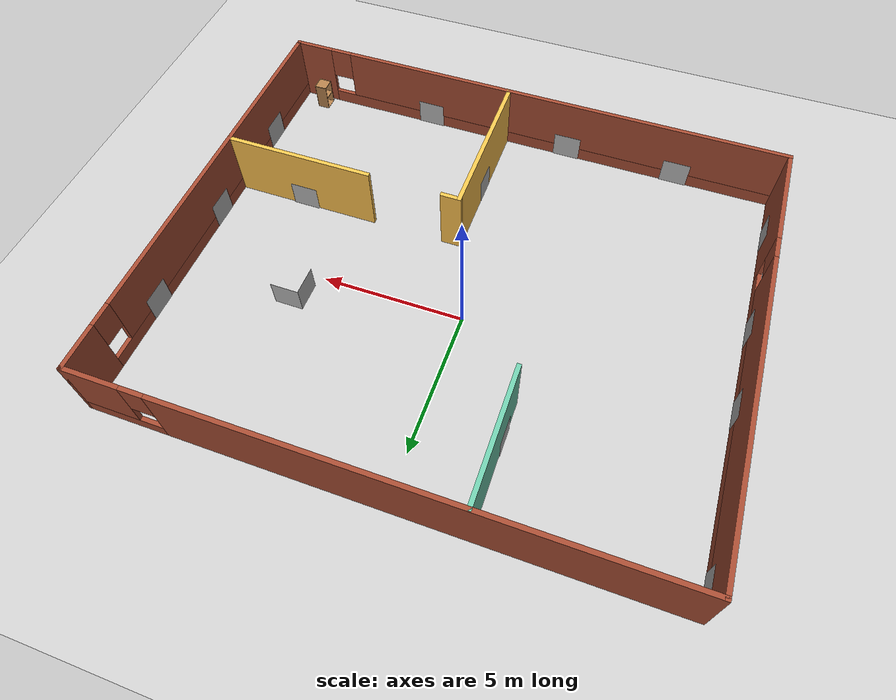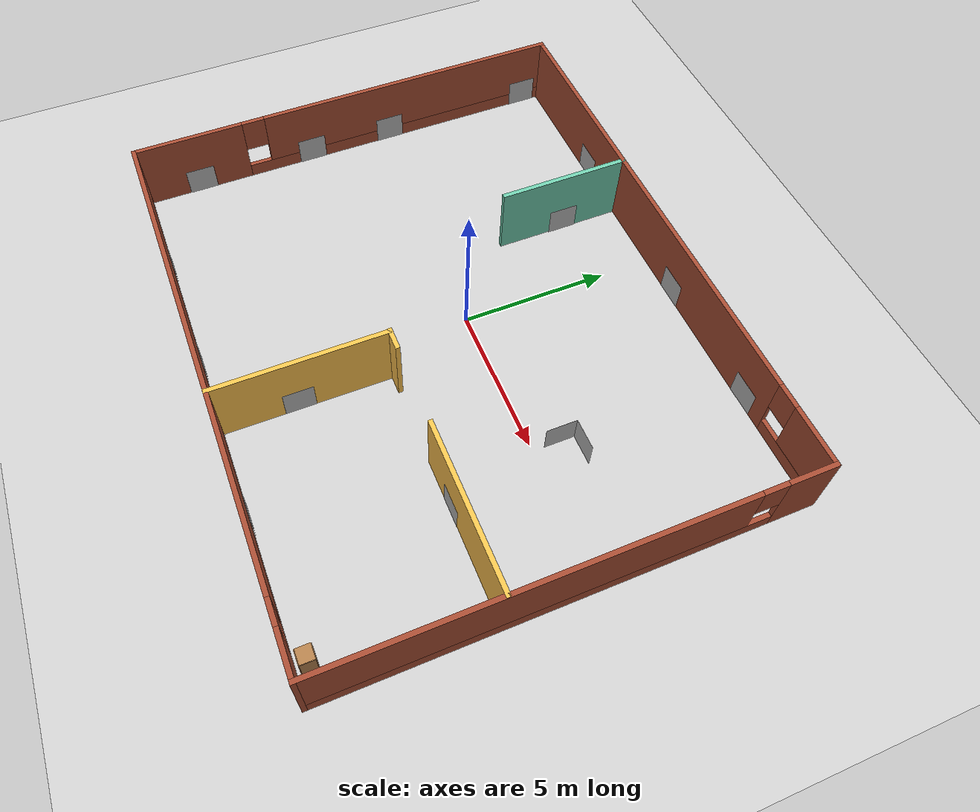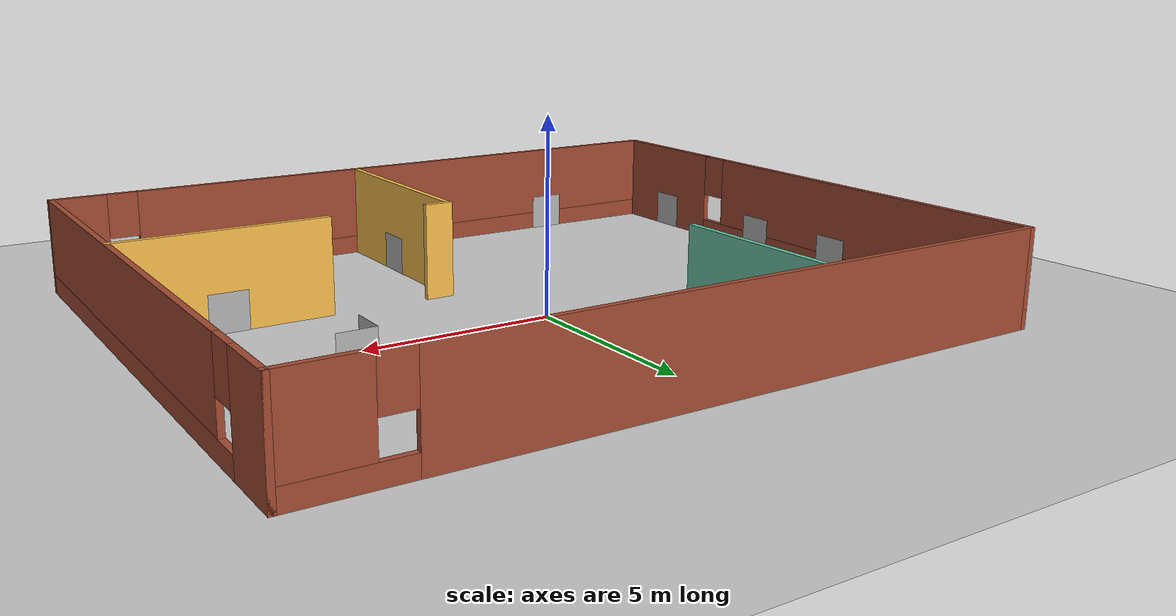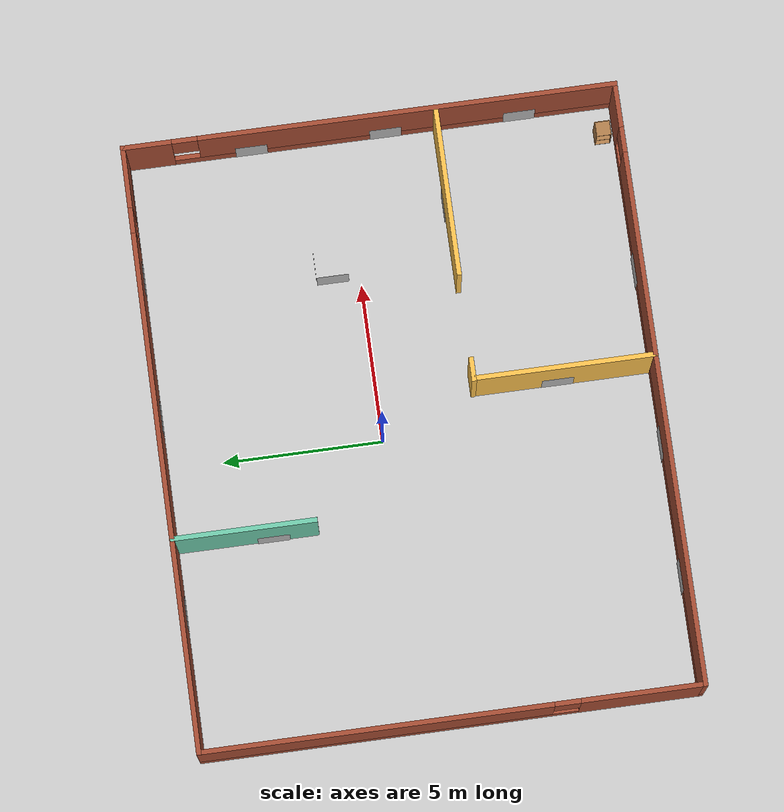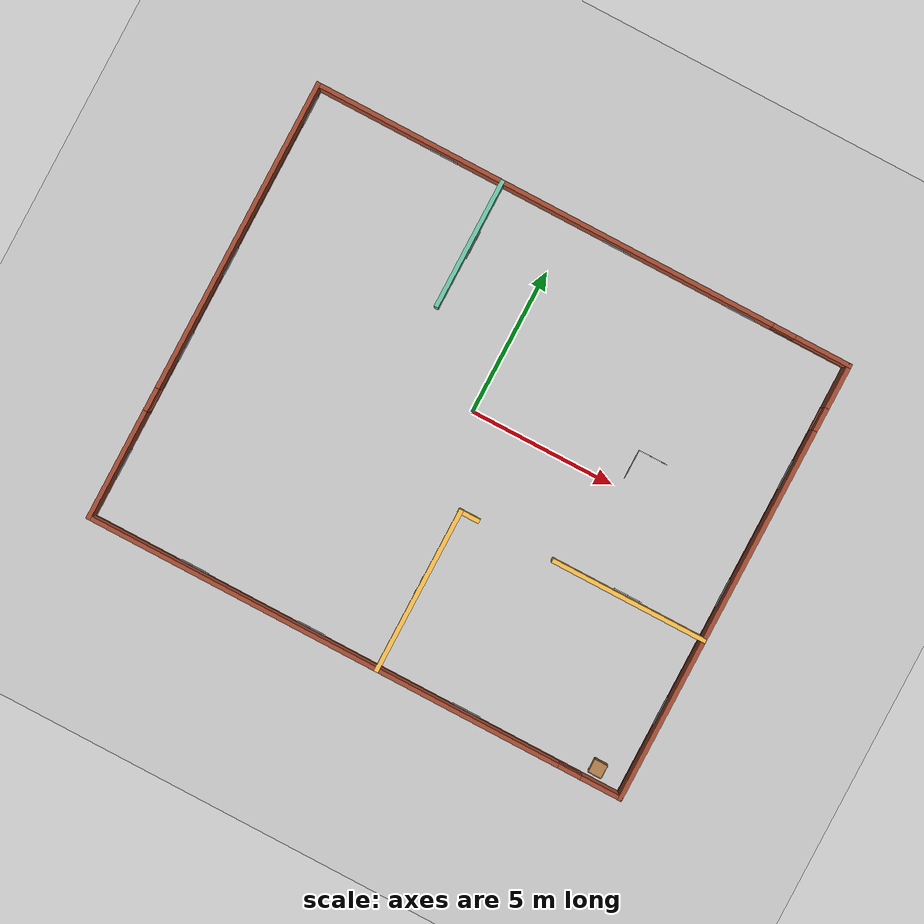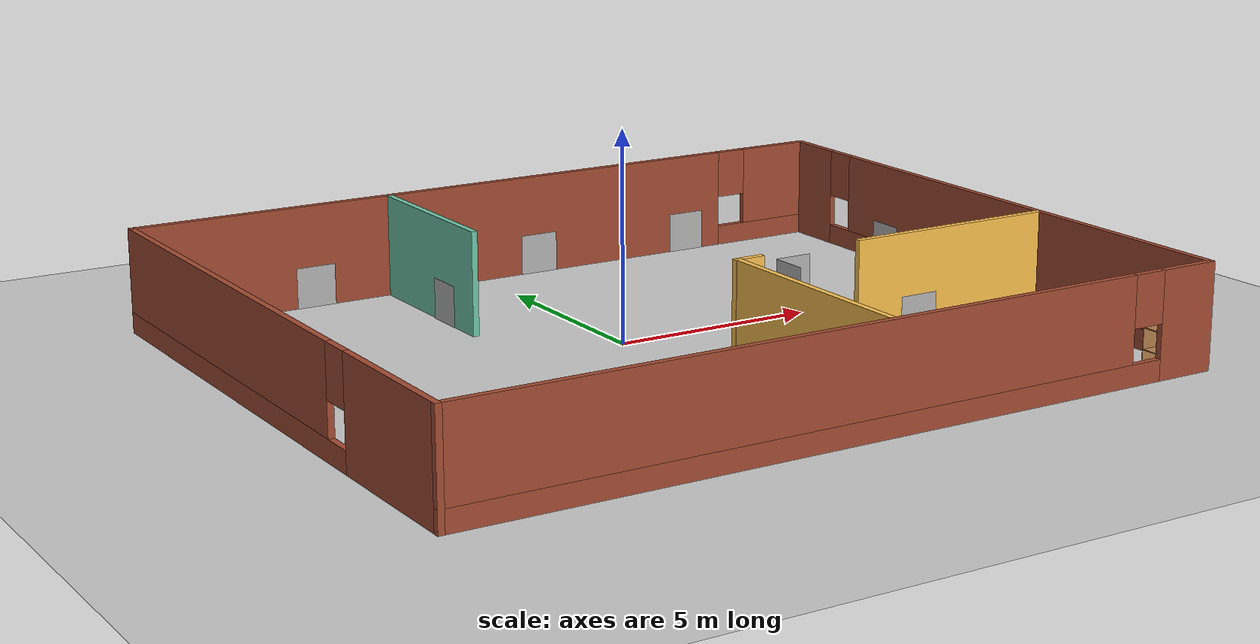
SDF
<sdf version="1.7">
 <world name="default">
  <light name="sun" type="directional">
   <pose>0 0 10 0 -0 0</pose>
   <diffuse>0.8 0.8 0.8 1</diffuse>
   <specular>0.2 0.2 0.2 1</specular>
   <attenuation>
    <range>1000</range>
    <constant>0.9</constant>
    <linear>0.01</linear>
    <quadratic>0.001</quadratic>
   </attenuation>
   <direction>-0.5 0.1 -0.9</direction>
   <spot><inner_angle>0</inner_angle><outer_angle>0</outer_angle><falloff>0</falloff></spot>
  </light>
  <model name="ground_plane">
   <static>1</static>
   <link name="link">
    <collision name="collision">
     <geometry><plane><normal>0 0 1</normal><size>100 100</size></plane></geometry>
     <surface><friction><ode><mu>100</mu><mu2>50</mu2></ode></friction></surface>
    </collision>
    <visual name="visual">
     <cast_shadows>0</cast_shadows>
     <geometry><plane><normal>0 0 1</normal><size>100 100</size></plane></geometry>
     <material>
      <script><uri>file://media/materials/scripts/gazebo.material</uri><name>Gazebo/Grey</name></script>
     </material>
    </visual>
   </link>
  </model>
  <gravity>0 0 -9.8</gravity>
  <magnetic_field>6e-06 2.3e-05 -4.2e-05</magnetic_field>
  <atmosphere type="adiabatic"/>
  <physics type="ode">
   <max_step_size>0.001</max_step_size>
   <real_time_factor>1</real_time_factor>
   <real_time_update_rate>1000</real_time_update_rate>
  </physics>
  <scene><ambient>0.4 0.4 0.4 1</ambient><background>0.7 0.7 0.7 1</background><shadows>1</shadows></scene>
  <spherical_coordinates>
   <surface_model>EARTH_WGS84</surface_model>
   <latitude_deg>0</latitude_deg>
   <longitude_deg>0</longitude_deg>
   <elevation>0</elevation>
   <heading_deg>0</heading_deg>
  </spherical_coordinates>
  <model name="Building">
   <pose>0.34004 -0.894772 0 0 -0 0</pose>
   <link name="Wall_10">
    <pose>-9.425 0 0 0 -0 1.5708</pose>
    <visual name="Wall_10_Visual_0">
     <pose>-5.8232 0 1.25 0 -0 0</pose>
     <geometry><box><size>3.85359 0.15 2.5</size></box></geometry>
     <material>
      <script><uri>file://media/materials/scripts/gazebo.material</uri><name>Gazebo/Bricks</name></script>
      <ambient>1 1 1 1</ambient>
     </material>
     <meta><layer>0</layer></meta>
    </visual>
    <collision name="Wall_10_Collision_0">
     <geometry><box><size>3.85359 0.15 2.5</size></box></geometry>
     <pose>-5.8232 0 1.25 0 -0 0</pose>
    </collision>
    <visual name="Wall_10_Visual_1">
     <pose>1.9268 0 0.25 0 -0 0</pose>
     <geometry><box><size>11.6464 0.15 0.5</size></box></geometry>
     <material>
      <script><uri>file://media/materials/scripts/gazebo.material</uri><name>Gazebo/Bricks</name></script>
      <ambient>1 1 1 1</ambient>
     </material>
     <meta><layer>0</layer></meta>
    </visual>
    <collision name="Wall_10_Collision_1">
     <geometry><box><size>11.6464 0.15 0.5</size></box></geometry>
     <pose>1.9268 0 0.25 0 -0 0</pose>
    </collision>
    <visual name="Wall_10_Visual_2">
     <pose>2.3268 0 1.5 0 -0 0</pose>
     <geometry><box><size>10.8464 0.15 2</size></box></geometry>
     <material>
      <script><uri>file://media/materials/scripts/gazebo.material</uri><name>Gazebo/Bricks</name></script>
      <ambient>1 1 1 1</ambient>
     </material>
     <meta><layer>0</layer></meta>
    </visual>
    <collision name="Wall_10_Collision_2">
     <geometry><box><size>10.8464 0.15 2</size></box></geometry>
     <pose>2.3268 0 1.5 0 -0 0</pose>
    </collision>
    <visual name="Wall_10_Visual_3">
     <pose>-3.49641 0 1.9 0 -0 0</pose>
     <geometry><box><size>0.8 0.15 1.2</size></box></geometry>
     <material>
      <script><uri>file://media/materials/scripts/gazebo.material</uri><name>Gazebo/Bricks</name></script>
      <ambient>1 1 1 1</ambient>
     </material>
     <meta><layer>0</layer></meta>
    </visual>
    <collision name="Wall_10_Collision_3">
     <geometry><box><size>0.8 0.15 1.2</size></box></geometry>
     <pose>-3.49641 0 1.9 0 -0 0</pose>
    </collision>
   </link>
   <link name="Wall_12">
    <collision name="Wall_12_Collision">
     <geometry><box><size>4.5 0.15 2.5</size></box></geometry>
     <pose>0 0 1.25 0 -0 0</pose>
    </collision>
    <visual name="Wall_12_Visual">
     <pose>0 0 1.25 0 -0 0</pose>
     <geometry><box><size>4.5 0.15 2.5</size></box></geometry>
     <material>
      <script><uri>file://media/materials/scripts/gazebo.material</uri><name>Gazebo/Grey</name></script>
      <ambient>0.435294 0.796078 0.67451 1</ambient>
     </material>
     <meta><layer>0</layer></meta>
    </visual>
    <pose>-2.89284 5.48192 0 0 -0 -1.5708</pose>
   </link>
   <link name="Wall_17">
    <pose>5.09313 -2.07245 0 0 -0 3.14159</pose>
    <visual name="Wall_17_Visual_0">
     <pose>-1.67496 0 1.25 0 -0 0</pose>
     <geometry><box><size>5.43506 0.15 2.5</size></box></geometry>
     <material>
      <script><uri>file://media/materials/scripts/gazebo.material</uri><name>Gazebo/Grey</name></script>
      <ambient>1 0.764706 0.305882 1</ambient>
     </material>
     <meta><layer>0</layer></meta>
    </visual>
    <collision name="Wall_17_Collision_0">
     <geometry><box><size>5.43506 0.15 2.5</size></box></geometry>
     <pose>-1.67496 0 1.25 0 -0 0</pose>
    </collision>
    <visual name="Wall_17_Visual_1">
     <pose>4.01253 0 1.25 0 -0 0</pose>
     <geometry><box><size>0.759923 0.15 2.5</size></box></geometry>
     <material>
      <script><uri>file://media/materials/scripts/gazebo.material</uri><name>Gazebo/Grey</name></script>
      <ambient>1 0.764706 0.305882 1</ambient>
     </material>
     <meta><layer>0</layer></meta>
    </visual>
    <collision name="Wall_17_Collision_1">
     <geometry><box><size>0.759923 0.15 2.5</size></box></geometry>
     <pose>4.01253 0 1.25 0 -0 0</pose>
    </collision>
   </link>
   <link name="Wall_18">
    <collision name="Wall_18_Collision">
     <geometry><box><size>5.75 0.15 2.5</size></box></geometry>
     <pose>0 0 1.25 0 -0 0</pose>
    </collision>
    <visual name="Wall_18_Visual">
     <pose>0 0 1.25 0 -0 0</pose>
     <geometry><box><size>5.75 0.15 2.5</size></box></geometry>
     <material>
      <script><uri>file://media/materials/scripts/gazebo.material</uri><name>Gazebo/Grey</name></script>
      <ambient>1 0.764706 0.305882 1</ambient>
     </material>
     <meta><layer>0</layer></meta>
    </visual>
    <pose>0.793131 -4.87245 0 0 -0 -1.5708</pose>
   </link>
   <link name="Wall_7">
    <pose>-0 7.675 0 0 -0 0</pose>
    <visual name="Wall_7_Visual_0">
     <pose>-1.39268 0 1.25 0 -0 0</pose>
     <geometry><box><size>16.2146 0.15 2.5</size></box></geometry>
     <material>
      <script><uri>file://media/materials/scripts/gazebo.material</uri><name>Gazebo/Bricks</name></script>
      <ambient>1 1 1 1</ambient>
     </material>
     <meta><layer>0</layer></meta>
    </visual>
    <collision name="Wall_7_Collision_0">
     <geometry><box><size>16.2146 0.15 2.5</size></box></geometry>
     <pose>-1.39268 0 1.25 0 -0 0</pose>
    </collision>
    <visual name="Wall_7_Visual_1">
     <pose>8.10732 0 0.25 0 -0 0</pose>
     <geometry><box><size>2.78535 0.15 0.5</size></box></geometry>
     <material>
      <script><uri>file://media/materials/scripts/gazebo.material</uri><name>Gazebo/Bricks</name></script>
      <ambient>1 1 1 1</ambient>
     </material>
     <meta><layer>0</layer></meta>
    </visual>
    <collision name="Wall_7_Collision_1">
     <geometry><box><size>2.78535 0.15 0.5</size></box></geometry>
     <pose>8.10732 0 0.25 0 -0 0</pose>
    </collision>
    <visual name="Wall_7_Visual_2">
     <pose>8.50732 0 1.5 0 -0 0</pose>
     <geometry><box><size>1.98535 0.15 2</size></box></geometry>
     <material>
      <script><uri>file://media/materials/scripts/gazebo.material</uri><name>Gazebo/Bricks</name></script>
      <ambient>1 1 1 1</ambient>
     </material>
     <meta><layer>0</layer></meta>
    </visual>
    <collision name="Wall_7_Collision_2">
     <geometry><box><size>1.98535 0.15 2</size></box></geometry>
     <pose>8.50732 0 1.5 0 -0 0</pose>
    </collision>
    <visual name="Wall_7_Visual_3">
     <pose>7.11465 0 1.9 0 -0 0</pose>
     <geometry><box><size>0.8 0.15 1.2</size></box></geometry>
     <material>
      <script><uri>file://media/materials/scripts/gazebo.material</uri><name>Gazebo/Bricks</name></script>
      <ambient>1 1 1 1</ambient>
     </material>
     <meta><layer>0</layer></meta>
    </visual>
    <collision name="Wall_7_Collision_3">
     <geometry><box><size>0.8 0.15 1.2</size></box></geometry>
     <pose>7.11465 0 1.9 0 -0 0</pose>
    </collision>
   </link>
   <link name="Wall_8">
    <pose>9.425 0 0 0 -0 -1.5708</pose>
    <visual name="Wall_8_Visual_0">
     <pose>-6.95523 0 1.25 0 -0 0</pose>
     <geometry><box><size>1.58954 0.15 2.5</size></box></geometry>
     <material>
      <script><uri>file://media/materials/scripts/gazebo.material</uri><name>Gazebo/Bricks</name></script>
      <ambient>1 1 1 1</ambient>
     </material>
     <meta><layer>0</layer></meta>
    </visual>
    <collision name="Wall_8_Collision_0">
     <geometry><box><size>1.58954 0.15 2.5</size></box></geometry>
     <pose>-6.95523 0 1.25 0 -0 0</pose>
    </collision>
    <visual name="Wall_8_Visual_1">
     <pose>0.79477 0 0.25 0 -0 0</pose>
     <geometry><box><size>13.9105 0.15 0.5</size></box></geometry>
     <material>
      <script><uri>file://media/materials/scripts/gazebo.material</uri><name>Gazebo/Bricks</name></script>
      <ambient>1 1 1 1</ambient>
     </material>
     <meta><layer>0</layer></meta>
    </visual>
    <collision name="Wall_8_Collision_1">
     <geometry><box><size>13.9105 0.15 0.5</size></box></geometry>
     <pose>0.79477 0 0.25 0 -0 0</pose>
    </collision>
    <visual name="Wall_8_Visual_2">
     <pose>1.19477 0 1.5 0 -0 0</pose>
     <geometry><box><size>13.1105 0.15 2</size></box></geometry>
     <material>
      <script><uri>file://media/materials/scripts/gazebo.material</uri><name>Gazebo/Bricks</name></script>
      <ambient>1 1 1 1</ambient>
     </material>
     <meta><layer>0</layer></meta>
    </visual>
    <collision name="Wall_8_Collision_2">
     <geometry><box><size>13.1105 0.15 2</size></box></geometry>
     <pose>1.19477 0 1.5 0 -0 0</pose>
    </collision>
    <visual name="Wall_8_Visual_3">
     <pose>-5.76046 0 1.9 0 -0 0</pose>
     <geometry><box><size>0.8 0.15 1.2</size></box></geometry>
     <material>
      <script><uri>file://media/materials/scripts/gazebo.material</uri><name>Gazebo/Bricks</name></script>
      <ambient>1 1 1 1</ambient>
     </material>
     <meta><layer>0</layer></meta>
    </visual>
    <collision name="Wall_8_Collision_3">
     <geometry><box><size>0.8 0.15 1.2</size></box></geometry>
     <pose>-5.76046 0 1.9 0 -0 0</pose>
    </collision>
   </link>
   <link name="Wall_9">
    <pose>-0 -7.675 0 0 -0 3.14159</pose>
    <visual name="Wall_9_Visual_0">
     <pose>-8.76003 0 1.25 0 -0 0</pose>
     <geometry><box><size>1.47995 0.15 2.5</size></box></geometry>
     <material>
      <script><uri>file://media/materials/scripts/gazebo.material</uri><name>Gazebo/Bricks</name></script>
      <ambient>1 1 1 1</ambient>
     </material>
     <meta><layer>0</layer></meta>
    </visual>
    <collision name="Wall_9_Collision_0">
     <geometry><box><size>1.47995 0.15 2.5</size></box></geometry>
     <pose>-8.76003 0 1.25 0 -0 0</pose>
    </collision>
    <visual name="Wall_9_Visual_1">
     <pose>0.739975 0 0.25 0 -0 0</pose>
     <geometry><box><size>17.5201 0.15 0.5</size></box></geometry>
     <material>
      <script><uri>file://media/materials/scripts/gazebo.material</uri><name>Gazebo/Bricks</name></script>
      <ambient>1 1 1 1</ambient>
     </material>
     <meta><layer>0</layer></meta>
    </visual>
    <collision name="Wall_9_Collision_1">
     <geometry><box><size>17.5201 0.15 0.5</size></box></geometry>
     <pose>0.739975 0 0.25 0 -0 0</pose>
    </collision>
    <visual name="Wall_9_Visual_2">
     <pose>1.13997 0 1.5 0 -0 0</pose>
     <geometry><box><size>16.7201 0.15 2</size></box></geometry>
     <material>
      <script><uri>file://media/materials/scripts/gazebo.material</uri><name>Gazebo/Bricks</name></script>
      <ambient>1 1 1 1</ambient>
     </material>
     <meta><layer>0</layer></meta>
    </visual>
    <collision name="Wall_9_Collision_2">
     <geometry><box><size>16.7201 0.15 2</size></box></geometry>
     <pose>1.13997 0 1.5 0 -0 0</pose>
    </collision>
    <visual name="Wall_9_Visual_3">
     <pose>-7.62005 0 1.9 0 -0 0</pose>
     <geometry><box><size>0.8 0.15 1.2</size></box></geometry>
     <material>
      <script><uri>file://media/materials/scripts/gazebo.material</uri><name>Gazebo/Bricks</name></script>
      <ambient>1 1 1 1</ambient>
     </material>
     <meta><layer>0</layer></meta>
    </visual>
    <collision name="Wall_9_Collision_3">
     <geometry><box><size>0.8 0.15 1.2</size></box></geometry>
     <pose>-7.62005 0 1.9 0 -0 0</pose>
    </collision>
   </link>
   <static>1</static>
  </model>
  <model name="cabinet">
   <static>1</static>
   <link name="cabinet_bottom_plate">
    <inertial>
     <pose>0 0 -1 0 -0 0</pose>
     <inertia><ixx>2.05</ixx><ixy>0</ixy><ixz>0</ixz><iyy>2.05</iyy><iyz>0</iyz><izz>2.05</izz></inertia>
     <mass>25</mass>
    </inertial>
    <collision name="cabinet_bottom_plate_geom">
     <pose>0 0 0.01 0 -0 0</pose>
     <geometry><box><size>0.45 0.45 0.02</size></box></geometry>
    </collision>
    <visual name="cabinet_bottom_plate_geom_visual">
     <pose>0 0 0.01 0 -0 0</pose>
     <geometry><box><size>0.45 0.45 0.02</size></box></geometry>
     <material>
      <script><uri>file://media/materials/scripts/gazebo.material</uri><name>Gazebo/Wood</name></script>
     </material>
    </visual>
    <collision name="cabinet_bottom_plate_geom_cabinet_back_plate">
     <pose>0.235 0 0.51 0 -0 0</pose>
     <geometry><box><size>0.02 0.45 1.02</size></box></geometry>
    </collision>
    <visual name="cabinet_bottom_plate_geom_cabinet_back_plate_visual">
     <pose>0.235 0 0.51 0 -0 0</pose>
     <geometry><box><size>0.02 0.45 1.02</size></box></geometry>
     <material>
      <script><uri>file://media/materials/scripts/gazebo.material</uri><name>Gazebo/Wood</name></script>
     </material>
    </visual>
    <collision name="cabinet_bottom_plate_geom_cabinet_left_plate">
     <pose>0 0.235 0.51 0 -0 0</pose>
     <geometry><box><size>0.45 0.02 1.02</size></box></geometry>
    </collision>
    <visual name="cabinet_bottom_plate_geom_cabinet_left_plate_visual">
     <pose>0 0.235 0.51 0 -0 0</pose>
     <geometry><box><size>0.45 0.02 1.02</size></box></geometry>
     <material>
      <script><uri>file://media/materials/scripts/gazebo.material</uri><name>Gazebo/Wood</name></script>
     </material>
    </visual>
    <collision name="cabinet_bottom_plate_geom_cabinet_middle_plate">
     <pose>0 0 0.51 0 -0 0</pose>
     <geometry><box><size>0.45 0.45 0.02</size></box></geometry>
    </collision>
    <visual name="cabinet_bottom_plate_geom_cabinet_middle_plate_visual">
     <pose>0 0 0.51 0 -0 0</pose>
     <geometry><box><size>0.45 0.45 0.02</size></box></geometry>
     <material>
      <script><uri>file://media/materials/scripts/gazebo.material</uri><name>Gazebo/Wood</name></script>
     </material>
    </visual>
    <collision name="cabinet_bottom_plate_geom_cabinet_right_plate">
     <pose>0 -0.235 0.51 0 -0 0</pose>
     <geometry><box><size>0.45 0.02 1.02</size></box></geometry>
    </collision>
    <visual name="cabinet_bottom_plate_geom_cabinet_right_plate_visual">
     <pose>0 -0.235 0.51 0 -0 0</pose>
     <geometry><box><size>0.45 0.02 1.02</size></box></geometry>
     <material>
      <script><uri>file://media/materials/scripts/gazebo.material</uri><name>Gazebo/Wood</name></script>
     </material>
    </visual>
    <collision name="cabinet_bottom_plate_geom_cabinet_top_plate">
     <pose>0 0 1.01 0 -0 0</pose>
     <geometry><box><size>0.45 0.45 0.02</size></box></geometry>
    </collision>
    <visual name="cabinet_bottom_plate_geom_cabinet_top_plate_visual">
     <pose>0 0 1.01 0 -0 0</pose>
     <geometry><box><size>0.45 0.45 0.02</size></box></geometry>
     <material>
      <script><uri>file://media/materials/scripts/gazebo.material</uri><name>Gazebo/Wood</name></script>
     </material>
    </visual>
   </link>
   <pose>8.77356 -8.13059 0 0 -0 0</pose>
  </model>
  <model name="ArUco Marker 0">
   <link name="link">
    <inertial>
     <mass>0.001</mass>
     <inertia>
      <ixx>3.75e-06</ixx>
      <ixy>0</ixy>
      <ixz>0</ixz>
      <iyy>1.875e-06</iyy>
      <iyz>0</iyz>
      <izz>1.875e-06</izz>
     </inertia>
    </inertial>
    <visual name="front_visual">
     <pose>5e-05 0 0 0 -0 0</pose>
     <geometry><box><size>0.0001 1 1</size></box></geometry>
     <material>
      <script>
       <uri>model://AR00/materials/scripts</uri>
       <uri>model://AR00/materials/textures</uri>
       <name>Marker0</name>
      </script>
     </material>
    </visual>
    <visual name="rear_visual">
     <pose>-5e-05 0 0 0 -0 0</pose>
     <geometry><box><size>0.0001 1 1</size></box></geometry>
    </visual>
    <collision name="collision"><geometry><box><size>0.0001 1 1</size></box></geometry></collision>
   </link>
   <pose>-9 -6.6027 0.5 3e-06 -0 0</pose>
  </model>
  <model name="ArUco Marker 1">
   <link name="link">
    <inertial>
     <mass>0.001</mass>
     <inertia>
      <ixx>3.75e-06</ixx>
      <ixy>0</ixy>
      <ixz>0</ixz>
      <iyy>1.875e-06</iyy>
      <iyz>0</iyz>
      <izz>1.875e-06</izz>
     </inertia>
    </inertial>
    <visual name="front_visual">
     <pose>5e-05 0 0 0 -0 0</pose>
     <geometry><box><size>0.0001 1 1</size></box></geometry>
     <material>
      <script>
       <uri>model://AR01/materials/scripts</uri>
       <uri>model://AR01/materials/textures</uri>
       <name>Marker1</name>
      </script>
     </material>
    </visual>
    <visual name="rear_visual">
     <pose>-5e-05 0 0 0 -0 0</pose>
     <geometry><box><size>0.0001 1 1</size></box></geometry>
    </visual>
    <collision name="collision"><geometry><box><size>0.0001 1 1</size></box></geometry></collision>
   </link>
   <pose>-9 -2.43358 0.5 3e-06 0 4e-06</pose>
  </model>
  <model name="ArUco Marker 2">
   <link name="link">
    <inertial>
     <mass>0.001</mass>
     <inertia>
      <ixx>3.75e-06</ixx>
      <ixy>0</ixy>
      <ixz>0</ixz>
      <iyy>1.875e-06</iyy>
      <iyz>0</iyz>
      <izz>1.875e-06</izz>
     </inertia>
    </inertial>
    <visual name="front_visual">
     <pose>5e-05 0 0 0 -0 0</pose>
     <geometry><box><size>0.0001 1 1</size></box></geometry>
     <material>
      <script>
       <uri>model://AR02/materials/scripts</uri>
       <uri>model://AR02/materials/textures</uri>
       <name>Marker2</name>
      </script>
     </material>
    </visual>
    <visual name="rear_visual">
     <pose>-5e-05 0 0 0 -0 0</pose>
     <geometry><box><size>0.0001 1 1</size></box></geometry>
    </visual>
    <collision name="collision"><geometry><box><size>0.0001 1 1</size></box></geometry></collision>
   </link>
   <pose>-9 0.600883 0.5 3e-06 0 4e-06</pose>
  </model>
  <model name="ArUco Marker 3">
   <link name="link">
    <inertial>
     <mass>0.001</mass>
     <inertia>
      <ixx>3.75e-06</ixx>
      <ixy>0</ixy>
      <ixz>0</ixz>
      <iyy>1.875e-06</iyy>
      <iyz>0</iyz>
      <izz>1.875e-06</izz>
     </inertia>
    </inertial>
    <visual name="front_visual">
     <pose>5e-05 0 0 0 -0 0</pose>
     <geometry><box><size>0.0001 1 1</size></box></geometry>
     <material>
      <script>
       <uri>model://AR03/materials/scripts</uri>
       <uri>model://AR03/materials/textures</uri>
       <name>Marker3</name>
      </script>
     </material>
    </visual>
    <visual name="rear_visual">
     <pose>-5e-05 0 0 0 -0 0</pose>
     <geometry><box><size>0.0001 1 1</size></box></geometry>
    </visual>
    <collision name="collision"><geometry><box><size>0.0001 1 1</size></box></geometry></collision>
   </link>
   <pose>-4.58408 6.7 0.5 3e-06 -0 -1.56993</pose>
  </model>
  <model name="ArUco Marker 4">
   <link name="link">
    <inertial>
     <mass>0.001</mass>
     <inertia>
      <ixx>3.75e-06</ixx>
      <ixy>0</ixy>
      <ixz>0</ixz>
      <iyy>1.875e-06</iyy>
      <iyz>0</iyz>
      <izz>1.875e-06</izz>
     </inertia>
    </inertial>
    <visual name="front_visual">
     <pose>5e-05 0 0 0 -0 0</pose>
     <geometry><box><size>0.0001 1 1</size></box></geometry>
     <material>
      <script>
       <uri>model://AR04/materials/scripts</uri>
       <uri>model://AR04/materials/textures</uri>
       <name>Marker4</name>
      </script>
     </material>
    </visual>
    <visual name="rear_visual">
     <pose>-5e-05 0 0 0 -0 0</pose>
     <geometry><box><size>0.0001 1 1</size></box></geometry>
    </visual>
    <collision name="collision"><geometry><box><size>0.0001 1 1</size></box></geometry></collision>
   </link>
   <pose>-1.31296 -8.47 0.5 3e-06 -0 1.56996</pose>
  </model>
  <model name="ArUco Marker 5">
   <link name="link">
    <inertial>
     <mass>0.001</mass>
     <inertia>
      <ixx>3.75e-06</ixx>
      <ixy>0</ixy>
      <ixz>0</ixz>
      <iyy>1.875e-06</iyy>
      <iyz>0</iyz>
      <izz>1.875e-06</izz>
     </inertia>
    </inertial>
    <visual name="front_visual">
     <pose>5e-05 0 0 0 -0 0</pose>
     <geometry><box><size>0.0001 1 1</size></box></geometry>
     <material>
      <script>
       <uri>model://AR05/materials/scripts</uri>
       <uri>model://AR05/materials/textures</uri>
       <name>Marker5</name>
      </script>
     </material>
    </visual>
    <visual name="rear_visual">
     <pose>-5e-05 0 0 0 -0 0</pose>
     <geometry><box><size>0.0001 1 1</size></box></geometry>
    </visual>
    <collision name="collision"><geometry><box><size>0.0001 1 1</size></box></geometry></collision>
   </link>
   <pose>-5.49648 -8.47 0.5 -3e-06 -0 1.56997</pose>
  </model>
  <model name="ArUco Marker 6">
   <link name="link">
    <inertial>
     <mass>0.001</mass>
     <inertia>
      <ixx>3.75e-06</ixx>
      <ixy>0</ixy>
      <ixz>0</ixz>
      <iyy>1.875e-06</iyy>
      <iyz>0</iyz>
      <izz>1.875e-06</izz>
     </inertia>
    </inertial>
    <visual name="front_visual">
     <pose>5e-05 0 0 0 -0 0</pose>
     <geometry><box><size>0.0001 1 1</size></box></geometry>
     <material>
      <script>
       <uri>model://AR06/materials/scripts</uri>
       <uri>model://AR06/materials/textures</uri>
       <name>Marker6</name>
      </script>
     </material>
    </visual>
    <visual name="rear_visual">
     <pose>-5e-05 0 0 0 -0 0</pose>
     <geometry><box><size>0.0001 1 1</size></box></geometry>
    </visual>
    <collision name="collision"><geometry><box><size>0.0001 1 1</size></box></geometry></collision>
   </link>
   <pose>1.0501 -5.60745 0.5 3e-06 -0 3.13998</pose>
  </model>
  <model name="ArUco Marker 8">
   <link name="link">
    <inertial>
     <mass>0.001</mass>
     <inertia>
      <ixx>3.75e-06</ixx>
      <ixy>0</ixy>
      <ixz>0</ixz>
      <iyy>1.875e-06</iyy>
      <iyz>0</iyz>
      <izz>1.875e-06</izz>
     </inertia>
    </inertial>
    <visual name="front_visual">
     <pose>5e-05 0 0 0 -0 0</pose>
     <geometry><box><size>0.0001 1 1</size></box></geometry>
     <material>
      <script>
       <uri>model://AR08/materials/scripts</uri>
       <uri>model://AR08/materials/textures</uri>
       <name>Marker8</name>
      </script>
     </material>
    </visual>
    <visual name="rear_visual">
     <pose>-5e-05 0 0 0 -0 0</pose>
     <geometry><box><size>0.0001 1 1</size></box></geometry>
    </visual>
    <collision name="collision"><geometry><box><size>0.0001 1 1</size></box></geometry></collision>
   </link>
   <pose>1.58425 6.7 0.5 3e-06 -0 -1.56994</pose>
  </model>
  <model name="ArUco Marker 9">
   <link name="link">
    <inertial>
     <mass>0.001</mass>
     <inertia>
      <ixx>3.75e-06</ixx>
      <ixy>0</ixy>
      <ixz>0</ixz>
      <iyy>1.875e-06</iyy>
      <iyz>0</iyz>
      <izz>1.875e-06</izz>
     </inertia>
    </inertial>
    <visual name="front_visual">
     <pose>5e-05 0 0 0 -0 0</pose>
     <geometry><box><size>0.0001 1 1</size></box></geometry>
     <material>
      <script>
       <uri>model://AR09/materials/scripts</uri>
       <uri>model://AR09/materials/textures</uri>
       <name>Marker9</name>
      </script>
     </material>
    </visual>
    <visual name="rear_visual">
     <pose>-5e-05 0 0 0 -0 0</pose>
     <geometry><box><size>0.0001 1 1</size></box></geometry>
    </visual>
    <collision name="collision"><geometry><box><size>0.0001 1 1</size></box></geometry></collision>
   </link>
   <pose>6.02877 6.7 0.5 3e-06 -0 -1.56994</pose>
  </model>
  <model name="ArUco Marker 10">
   <link name="link">
    <inertial>
     <mass>0.001</mass>
     <inertia>
      <ixx>3.75e-06</ixx>
      <ixy>0</ixy>
      <ixz>0</ixz>
      <iyy>1.875e-06</iyy>
      <iyz>0</iyz>
      <izz>1.875e-06</izz>
     </inertia>
    </inertial>
    <visual name="front_visual">
     <pose>5e-05 0 0 0 -0 0</pose>
     <geometry><box><size>0.0001 1 1</size></box></geometry>
     <material>
      <script>
       <uri>model://AR10/materials/scripts</uri>
       <uri>model://AR10/materials/textures</uri>
       <name>Marker10</name>
      </script>
     </material>
    </visual>
    <visual name="rear_visual">
     <pose>-5e-05 0 0 0 -0 0</pose>
     <geometry><box><size>0.0001 1 1</size></box></geometry>
    </visual>
    <collision name="collision"><geometry><box><size>0.0001 1 1</size></box></geometry></collision>
   </link>
   <pose>9.68324 2.85356 0.5 -3e-06 -0 3.13999</pose>
  </model>
  <model name="ArUco Marker 11">
   <link name="link">
    <inertial>
     <mass>0.001</mass>
     <inertia>
      <ixx>3.75e-06</ixx>
      <ixy>0</ixy>
      <ixz>0</ixz>
      <iyy>1.875e-06</iyy>
      <iyz>0</iyz>
      <izz>1.875e-06</izz>
     </inertia>
    </inertial>
    <visual name="front_visual">
     <pose>5e-05 0 0 0 -0 0</pose>
     <geometry><box><size>0.0001 1 1</size></box></geometry>
     <material>
      <script>
       <uri>model://AR11/materials/scripts</uri>
       <uri>model://AR11/materials/textures</uri>
       <name>Marker11</name>
      </script>
     </material>
    </visual>
    <visual name="rear_visual">
     <pose>-5e-05 0 0 0 -0 0</pose>
     <geometry><box><size>0.0001 1 1</size></box></geometry>
    </visual>
    <collision name="collision"><geometry><box><size>0.0001 1 1</size></box></geometry></collision>
   </link>
   <pose>9.68324 -1.38058 0.5 -3e-06 -0 3.13999</pose>
  </model>
  <model name="ArUco Marker 12">
   <link name="link">
    <inertial>
     <mass>0.001</mass>
     <inertia>
      <ixx>3.75e-06</ixx>
      <ixy>0</ixy>
      <ixz>0</ixz>
      <iyy>1.875e-06</iyy>
      <iyz>0</iyz>
      <izz>1.875e-06</izz>
     </inertia>
    </inertial>
    <visual name="front_visual">
     <pose>5e-05 0 0 0 -0 0</pose>
     <geometry><box><size>0.0001 1 1</size></box></geometry>
     <material>
      <script>
       <uri>model://AR12/materials/scripts</uri>
       <uri>model://AR12/materials/textures</uri>
       <name>Marker12</name>
      </script>
     </material>
    </visual>
    <visual name="rear_visual">
     <pose>-5e-05 0 0 0 -0 0</pose>
     <geometry><box><size>0.0001 1 1</size></box></geometry>
    </visual>
    <collision name="collision"><geometry><box><size>0.0001 1 1</size></box></geometry></collision>
   </link>
   <pose>7.08134 -2.855 0.5 3e-06 -0 1.56997</pose>
  </model>
  <model name="ArUco Marker 13">
   <link name="link">
    <inertial>
     <mass>0.001</mass>
     <inertia>
      <ixx>3.75e-06</ixx>
      <ixy>0</ixy>
      <ixz>0</ixz>
      <iyy>1.875e-06</iyy>
      <iyz>0</iyz>
      <izz>1.875e-06</izz>
     </inertia>
    </inertial>
    <visual name="front_visual">
     <pose>5e-05 0 0 0 -0 0</pose>
     <geometry><box><size>0.0001 1 1</size></box></geometry>
     <material>
      <script>
       <uri>model://AR13/materials/scripts</uri>
       <uri>model://AR13/materials/textures</uri>
       <name>Marker13</name>
      </script>
     </material>
    </visual>
    <visual name="rear_visual">
     <pose>-5e-05 0 0 0 -0 0</pose>
     <geometry><box><size>0.0001 1 1</size></box></geometry>
    </visual>
    <collision name="collision"><geometry><box><size>0.0001 1 1</size></box></geometry></collision>
   </link>
   <pose>5.23 0.869286 0.5 3e-06 0 3.13999</pose>
  </model>
  <model name="ArUco Marker 14">
   <link name="link">
    <inertial>
     <mass>0.001</mass>
     <inertia>
      <ixx>3.75e-06</ixx>
      <ixy>0</ixy>
      <ixz>0</ixz>
      <iyy>1.875e-06</iyy>
      <iyz>0</iyz>
      <izz>1.875e-06</izz>
     </inertia>
    </inertial>
    <visual name="front_visual">
     <pose>5e-05 0 0 0 -0 0</pose>
     <geometry><box><size>0.0001 1 1</size></box></geometry>
     <material>
      <script>
       <uri>model://AR14/materials/scripts</uri>
       <uri>model://AR14/materials/textures</uri>
       <name>Marker14</name>
      </script>
     </material>
    </visual>
    <visual name="rear_visual">
     <pose>-5e-05 0 0 0 -0 0</pose>
     <geometry><box><size>0.0001 1 1</size></box></geometry>
    </visual>
    <collision name="collision"><geometry><box><size>0.0001 1 1</size></box></geometry></collision>
   </link>
   <pose>4.23567 -8.47 0.5 3e-06 -0 1.56996</pose>
  </model>
  <model name="ArUco Marker 15">
   <link name="link">
    <inertial>
     <mass>0.001</mass>
     <inertia>
      <ixx>3.75e-06</ixx>
      <ixy>0</ixy>
      <ixz>0</ixz>
      <iyy>1.875e-06</iyy>
      <iyz>0</iyz>
      <izz>1.875e-06</izz>
     </inertia>
    </inertial>
    <visual name="front_visual">
     <pose>5e-05 0 0 0 -0 0</pose>
     <geometry><box><size>0.0001 1 1</size></box></geometry>
     <material>
      <script>
       <uri>model://AR15/materials/scripts</uri>
       <uri>model://AR15/materials/textures</uri>
       <name>Marker15</name>
      </script>
     </material>
    </visual>
    <visual name="rear_visual">
     <pose>-5e-05 0 0 0 -0 0</pose>
     <geometry><box><size>0.0001 1 1</size></box></geometry>
    </visual>
    <collision name="collision"><geometry><box><size>0.0001 1 1</size></box></geometry></collision>
   </link>
   <pose>9.68324 -5.61203 0.499993 -6e-06 -0 3.14</pose>
  </model>
  <model name="ArUco Marker 17">
   <link name="link">
    <inertial>
     <mass>0.001</mass>
     <inertia>
      <ixx>3.75e-06</ixx>
      <ixy>0</ixy>
      <ixz>0</ixz>
      <iyy>1.875e-06</iyy>
      <iyz>0</iyz>
      <izz>1.875e-06</izz>
     </inertia>
    </inertial>
    <visual name="front_visual">
     <pose>5e-05 0 0 0 -0 0</pose>
     <geometry><box><size>0.0001 1 1</size></box></geometry>
     <material>
      <script>
       <uri>model://AR17/materials/scripts</uri>
       <uri>model://AR17/materials/textures</uri>
       <name>Marker17</name>
      </script>
     </material>
    </visual>
    <visual name="rear_visual">
     <pose>-5e-05 0 0 0 -0 0</pose>
     <geometry><box><size>0.0001 1 1</size></box></geometry>
    </visual>
    <collision name="collision"><geometry><box><size>0.0001 1 1</size></box></geometry></collision>
   </link>
   <pose>6.14084 -3.05 0.5 3e-06 -0 -1.56994</pose>
  </model>
  <model name="ArUco Marker 18">
   <link name="link">
    <inertial>
     <mass>0.001</mass>
     <inertia>
      <ixx>3.75e-06</ixx>
      <ixy>0</ixy>
      <ixz>0</ixz>
      <iyy>1.875e-06</iyy>
      <iyz>0</iyz>
      <izz>1.875e-06</izz>
     </inertia>
    </inertial>
    <visual name="front_visual">
     <pose>5e-05 0 0 0 -0 0</pose>
     <geometry><box><size>0.0001 1 1</size></box></geometry>
     <material>
      <script>
       <uri>model://AR18/materials/scripts</uri>
       <uri>model://AR18/materials/textures</uri>
       <name>Marker18</name>
      </script>
     </material>
    </visual>
    <visual name="rear_visual">
     <pose>-5e-05 0 0 0 -0 0</pose>
     <geometry><box><size>0.0001 1 1</size></box></geometry>
    </visual>
    <collision name="collision"><geometry><box><size>0.0001 1 1</size></box></geometry></collision>
   </link>
   <pose>5.72798 1.38 0.5 -3e-06 -0 1.56997</pose>
  </model>
  <model name="ArUco Marker 19">
   <link name="link">
    <inertial>
     <mass>0.001</mass>
     <inertia>
      <ixx>3.75e-06</ixx>
      <ixy>0</ixy>
      <ixz>0</ixz>
      <iyy>1.875e-06</iyy>
      <iyz>0</iyz>
      <izz>1.875e-06</izz>
     </inertia>
    </inertial>
    <visual name="front_visual">
     <pose>5e-05 0 0 0 -0 0</pose>
     <geometry><box><size>0.0001 1 1</size></box></geometry>
     <material>
      <script>
       <uri>model://AR19/materials/scripts</uri>
       <uri>model://AR19/materials/textures</uri>
       <name>Marker19</name>
      </script>
     </material>
    </visual>
    <visual name="rear_visual">
     <pose>-5e-05 0 0 0 -0 0</pose>
     <geometry><box><size>0.0001 1 1</size></box></geometry>
    </visual>
    <collision name="collision"><geometry><box><size>0.0001 1 1</size></box></geometry></collision>
   </link>
   <pose>-9 6.03583 0.5 -3e-06 -0 4e-06</pose>
  </model>
  <model name="ArUco Marker 20">
   <link name="link">
    <inertial>
     <mass>0.001</mass>
     <inertia>
      <ixx>3.75e-06</ixx>
      <ixy>0</ixy>
      <ixz>0</ixz>
      <iyy>1.875e-06</iyy>
      <iyz>0</iyz>
      <izz>1.875e-06</izz>
     </inertia>
    </inertial>
    <visual name="front_visual">
     <pose>5e-05 0 0 0 -0 0</pose>
     <geometry><box><size>0.0001 1 1</size></box></geometry>
     <material>
      <script>
       <uri>model://AR20/materials/scripts</uri>
       <uri>model://AR20/materials/textures</uri>
       <name>Marker20</name>
      </script>
     </material>
    </visual>
    <visual name="rear_visual">
     <pose>-5e-05 0 0 0 -0 0</pose>
     <geometry><box><size>0.0001 1 1</size></box></geometry>
    </visual>
    <collision name="collision"><geometry><box><size>0.0001 1 1</size></box></geometry></collision>
   </link>
   <pose>-2.65 3.73864 0.5 3e-06 0 3.13997</pose>
  </model>
  <model name="ArUco Marker 16">
   <link name="link">
    <inertial>
     <mass>0.001</mass>
     <inertia>
      <ixx>3.75e-06</ixx>
      <ixy>0</ixy>
      <ixz>0</ixz>
      <iyy>1.875e-06</iyy>
      <iyz>0</iyz>
      <izz>1.875e-06</izz>
     </inertia>
    </inertial>
    <visual name="front_visual">
     <pose>5e-05 0 0 0 -0 0</pose>
     <geometry><box><size>0.0001 1 1</size></box></geometry>
     <material>
      <script>
       <uri>model://AR16/materials/scripts</uri>
       <uri>model://AR16/materials/textures</uri>
       <name>Marker16</name>
      </script>
     </material>
    </visual>
    <visual name="rear_visual">
     <pose>-5e-05 0 0 0 -0 0</pose>
     <geometry><box><size>0.0001 1 1</size></box></geometry>
    </visual>
    <collision name="collision"><geometry><box><size>0.0001 1 1</size></box></geometry></collision>
   </link>
   <pose>1.20916 -6.0305 0.5 -3e-06 -0 4e-06</pose>
  </model>
  <model name="ArUco Marker 7">
   <link name="link">
    <inertial>
     <mass>0.001</mass>
     <inertia>
      <ixx>3.75e-06</ixx>
      <ixy>0</ixy>
      <ixz>0</ixz>
      <iyy>1.875e-06</iyy>
      <iyz>0</iyz>
      <izz>1.875e-06</izz>
     </inertia>
    </inertial>
    <visual name="front_visual">
     <pose>5e-05 0 0 0 -0 0</pose>
     <geometry><box><size>0.0001 1 1</size></box></geometry>
     <material>
      <script>
       <uri>model://AR07/materials/scripts</uri>
       <uri>model://AR07/materials/textures</uri>
       <name>Marker7</name>
      </script>
     </material>
    </visual>
    <visual name="rear_visual">
     <pose>-5e-05 0 0 0 -0 0</pose>
     <geometry><box><size>0.0001 1 1</size></box></geometry>
    </visual>
    <collision name="collision"><geometry><box><size>0.0001 1 1</size></box></geometry></collision>
   </link>
   <pose>-2.45 4.66213 0.5 3e-06 0 4e-06</pose>
  </model>
 </world>
</sdf>
